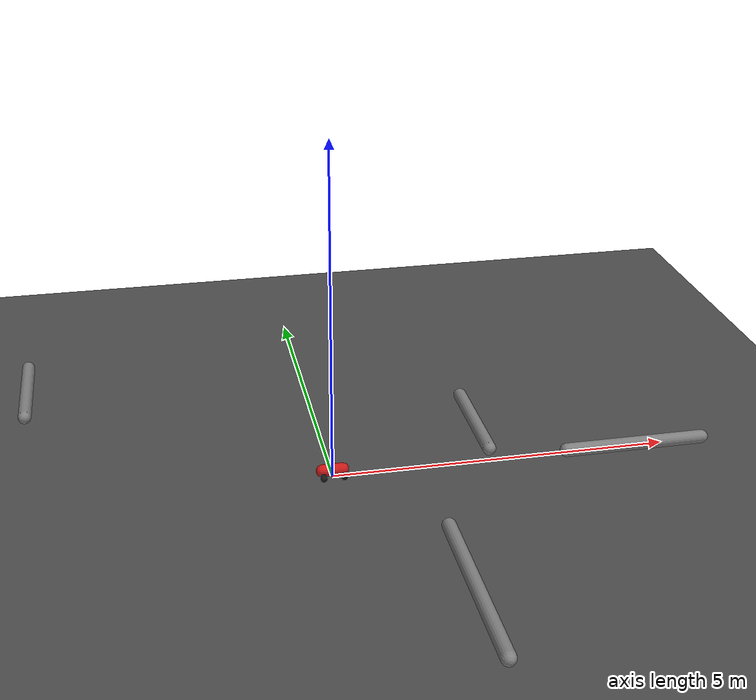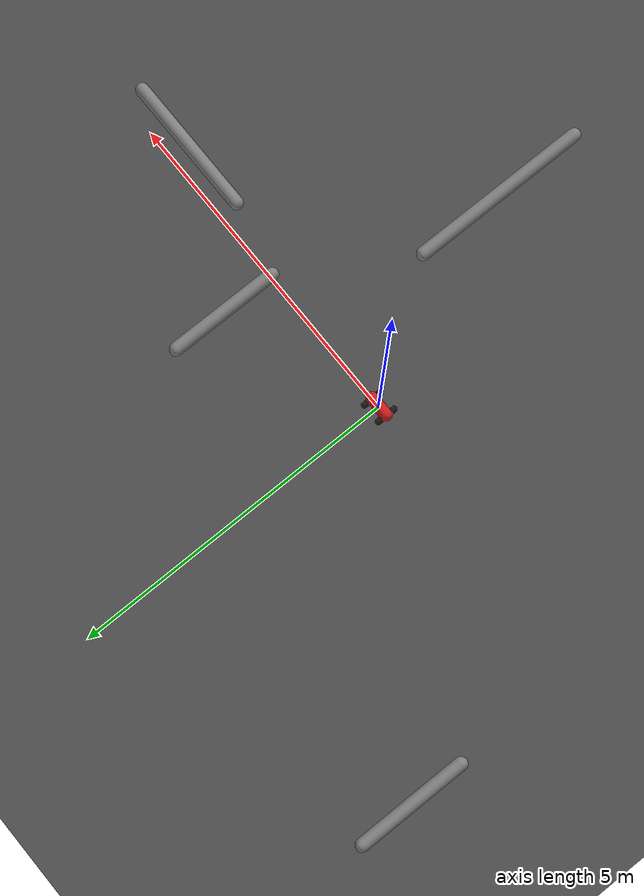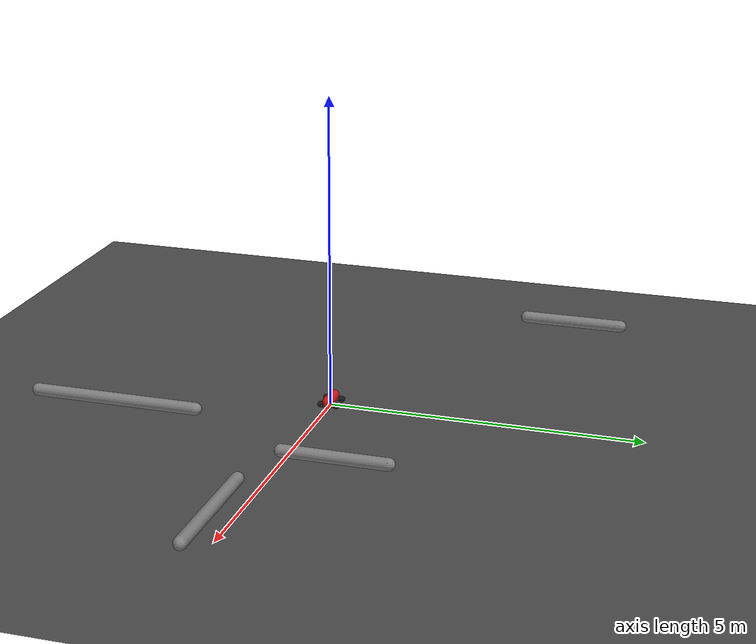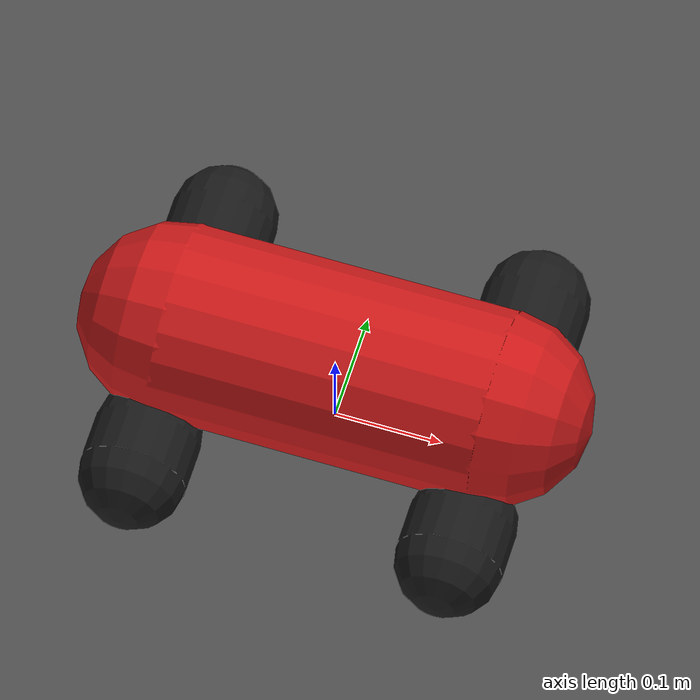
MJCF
<mujoco model="ackermann_car_scene">
  <compiler angle="radian"/>
  <option timestep="0.002" gravity="0 0 -9.81" iterations="4" cone="pyramidal"/>

  <default>
    <joint damping="0.05"/>
    <geom friction="2.0 0.1 0.1" contype="1" conaffinity="1"/>
  </default>

  <worldbody>
    <geom name="floor" type="plane" size="8.0 8.0 0.1" rgba="0.3 0.3 0.3 1"/>
    <geom name="wall_0" type="capsule" size="0.1" fromto="-4.381488076006133 2.2053106648183736 0.2 -4.381488076006133 3.869132812917906 0.2" rgba="0.5 0.5 0.5 1"/>
    <geom name="wall_1" type="capsule" size="0.1" fromto="3.417889818285795 -0.2676284322979683 0.2 5.503717220902535 -0.2676284322979683 0.2" rgba="0.5 0.5 0.5 1"/>
    <geom name="wall_2" type="capsule" size="0.1" fromto="1.2516132648974576 -4.489893694662453 0.2 1.2516132648974576 -1.7990106729141158 0.2" rgba="0.5 0.5 0.5 1"/>
    <geom name="wall_3" type="capsule" size="0.1" fromto="2.3240722165813565 -0.010143051401888648 0.2 2.3240722165813565 1.6499355441656047 0.2" rgba="0.5 0.5 0.5 1"/>

    <body name="chassis" pos="0 0 0.1">
      <freejoint name="chassis_free"/>
      <geom name="chassis_geom" type="capsule" size="0.09" fromto="-0.15 0 0 0.15 0 0" mass="3.0" rgba="0.8 0.1 0.1 1"/>

      <body name="wheel_fl" pos="0.1483 0.115 -0.05">
        <joint name="steer_fl" type="hinge" axis="0 0 1" range="-0.6 0.6" limited="true" damping="1.0"/>
        <geom name="knuckle_fl_geom" type="sphere" size="0.01" mass="0.05" rgba="0.2 0.2 0.2 1"/>
        <body name="wheel_fl_spin">
          <joint name="spin_fl" type="hinge" axis="0 1 0" damping="0.001"/>
          <geom name="wheel_fl_geom" type="capsule" size="0.05" fromto="0 -0.0215 0 0 0.0215 0" mass="0.1" rgba="0.1 0.1 0.1 1"/>
        </body>
      </body>
      <body name="wheel_fr" pos="0.1483 -0.115 -0.05">
        <joint name="steer_fr" type="hinge" axis="0 0 1" range="-0.6 0.6" limited="true" damping="1.0"/>
        <geom name="knuckle_fr_geom" type="sphere" size="0.01" mass="0.05" rgba="0.2 0.2 0.2 1"/>
        <body name="wheel_fr_spin">
          <joint name="spin_fr" type="hinge" axis="0 1 0" damping="0.001"/>
          <geom name="wheel_fr_geom" type="capsule" size="0.05" fromto="0 -0.0215 0 0 0.0215 0" mass="0.1" rgba="0.1 0.1 0.1 1"/>
        </body>
      </body>
      <body name="wheel_rl" pos="-0.1483 0.115 -0.05">
        <joint name="spin_rl" type="hinge" axis="0 1 0" damping="0.001"/>
        <geom name="wheel_rl_geom" type="capsule" size="0.05" fromto="0 -0.0215 0 0 0.0215 0" mass="0.1" rgba="0.1 0.1 0.1 1"/>
      </body>
      <body name="wheel_rr" pos="-0.1483 -0.115 -0.05">
        <joint name="spin_rr" type="hinge" axis="0 1 0" damping="0.001"/>
        <geom name="wheel_rr_geom" type="capsule" size="0.05" fromto="0 -0.0215 0 0 0.0215 0" mass="0.1" rgba="0.1 0.1 0.1 1"/>
      </body>
    </body>
  </worldbody>

  <equality>
    <joint joint1="steer_fl" joint2="steer_fr"/>
  </equality>

  <actuator>
    <position name="steer" joint="steer_fl" kp="80" ctrlrange="-0.6 0.6" forcerange="-20 20"/>
    <motor name="throttle_rl" joint="spin_rl" gear="0.78" ctrlrange="-1 1"/>
    <motor name="throttle_rr" joint="spin_rr" gear="0.78" ctrlrange="-1 1"/>
  </actuator>
</mujoco>
